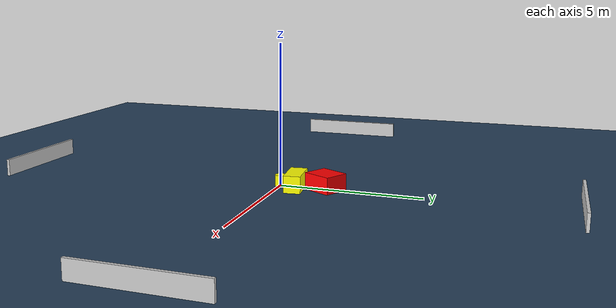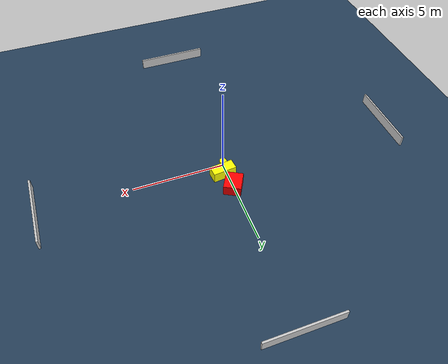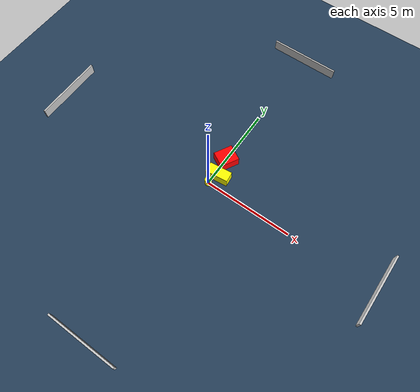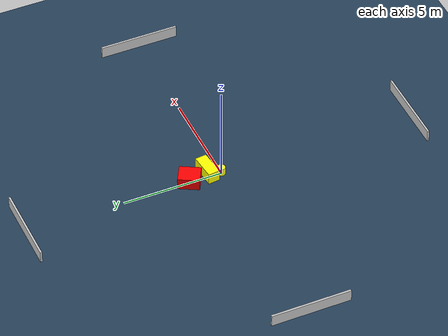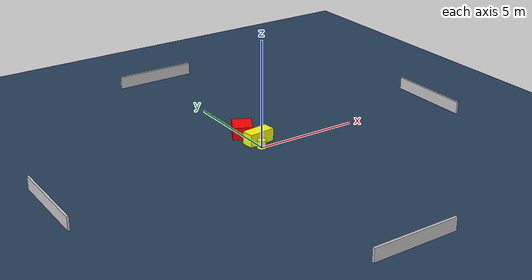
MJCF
<?xml version="1.0" ?>
<mujoco model="generated_environment">
  <option timestep="0.01" integrator="RK4" cone="elliptic"/>
  <default>
    <geom density="1"/>
  </default>
  <asset>
    <texture builtin="gradient" height="3072" name="skybox" rgb1="0.3 0.5 0.7" rgb2="0 0 0" type="skybox" width="512"/>
    <texture builtin="checker" height="300" name="groundplane" rgb1="0.2 0.3 0.4" rgb2="0.1 0.2 0.3" type="2d" width="300"/>
    <material name="groundplane" reflectance="0.2" texrepeat="5 5" texture="groundplane"/>
  </asset>
  <worldbody>
    <light dir="0 0 -1" directional="true" pos="0 0 1.5"/>
    <geom condim="3" friction="0.5 0.005 0.001" material="groundplane" name="floor" pos="0 0 0" size="0 0 0.05" type="plane"/>
    <body name="walls">
      <geom name="wall_1" condim="4" pos="-10.0 0.0 0.3" rgba="0.800000011920929 0.800000011920929 0.800000011920929 1.0" size="0.05 2.0 0.3" type="box"/>
      <geom name="wall_2" condim="4" pos="10.0 0.0 0.3" rgba="0.800000011920929 0.800000011920929 0.800000011920929 1.0" size="0.05 2.0 0.3" type="box"/>
      <geom name="wall_3" condim="4" pos="0.0 -10.0 0.3" rgba="0.800000011920929 0.800000011920929 0.800000011920929 1.0" size="2.0 0.05 0.3" type="box"/>
      <geom name="wall_4" condim="4" pos="0.0 10.0 0.3" rgba="0.800000011920929 0.800000011920929 0.800000011920929 1.0" size="2.0 0.05 0.3" type="box"/>
    </body>
    <body name="robot">
      <joint name="joint_x" type="slide" pos="0 0 0" axis="1 0 0"/>
      <joint name="joint_y" type="slide" pos="0 0 0" axis="0 1 0"/>
      <geom name="robot" type="cylinder" pos="0.0 0.0 0.2" size="0.2 0.2 0.0" mass="5.0" friction="1.0 0.005 0.0001" condim="4" rgba="1.0 1.0 0.0 1.0"/>
    </body>
    <body name="obstacle_1_movable">
      <geom name="obstacle_1_movable" condim="4" pos="0.22938288529644563 0.6180091930384196 0.3" euler="0 0 186.07855587193546" friction="0.0 0.005 0.001" rgba="1.0 1.0 0.0 1.0" size="0.6429715104832738 0.29366433366765504 0.3" type="box" mass="0.1"/>
      <joint type="free"/>
    </body>
    <body name="obstacle_2_static">
      <geom name="obstacle_2_static" condim="4" pos="0.021967324002642615 1.642284569517483 0.3" euler="0 0 151.2608638319276" friction="0.0 0.005 0.001" rgba="1.0 0.0 0.0 1.0" size="0.45845975204856304 0.531197522633853 0.3" type="box"/>
    </body>
  </worldbody>
  <actuator>
    <motor name="actuator_x" joint="joint_x" gear="1" ctrlrange="-1 1"/>
    <motor name="actuator_y" joint="joint_y" gear="1" ctrlrange="-1 1"/>
  </actuator>
</mujoco>
